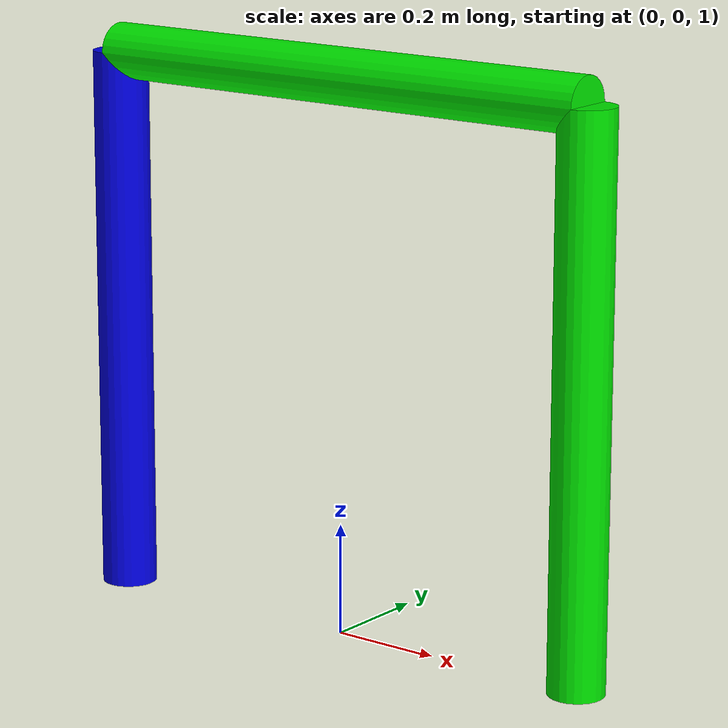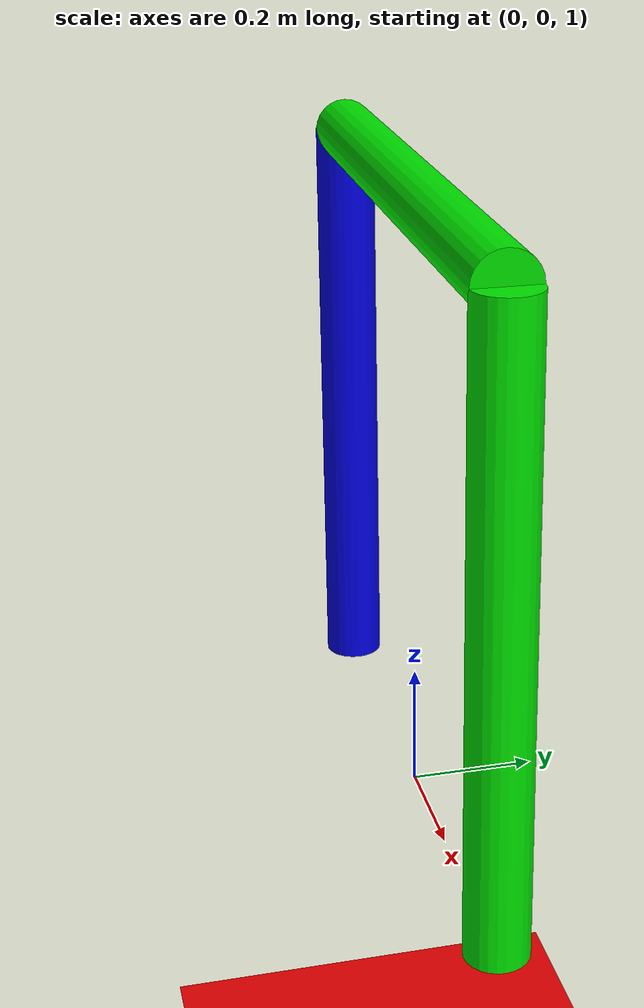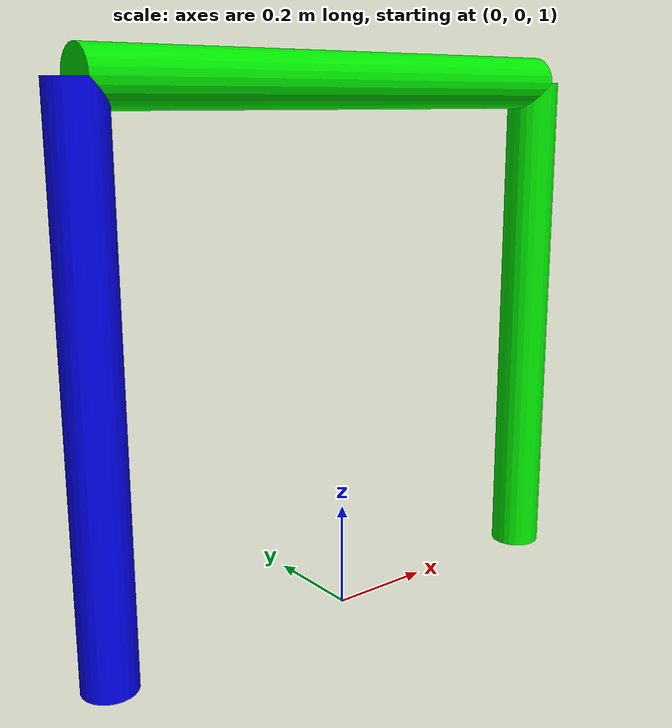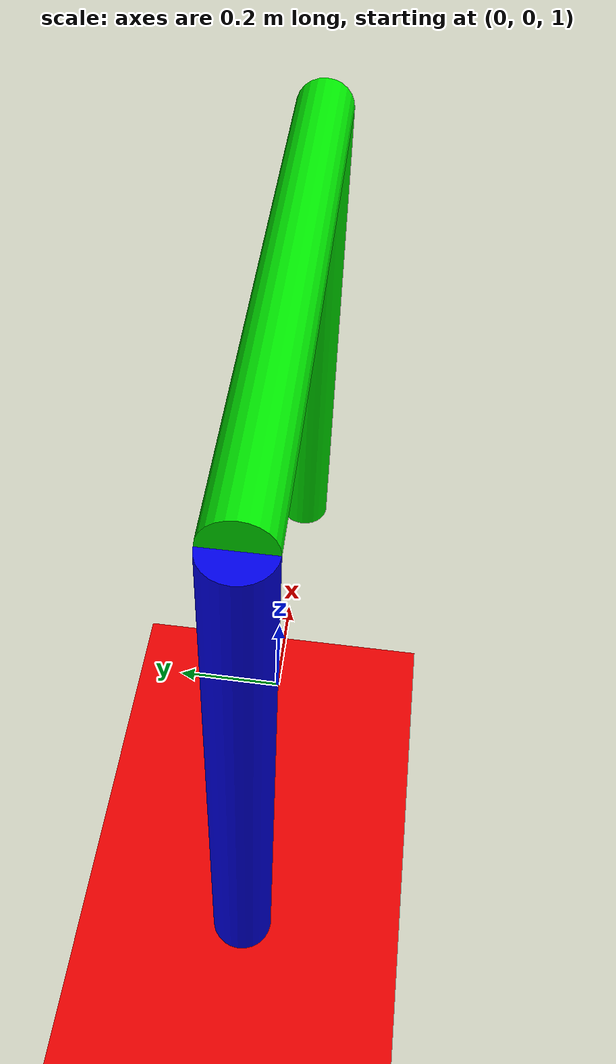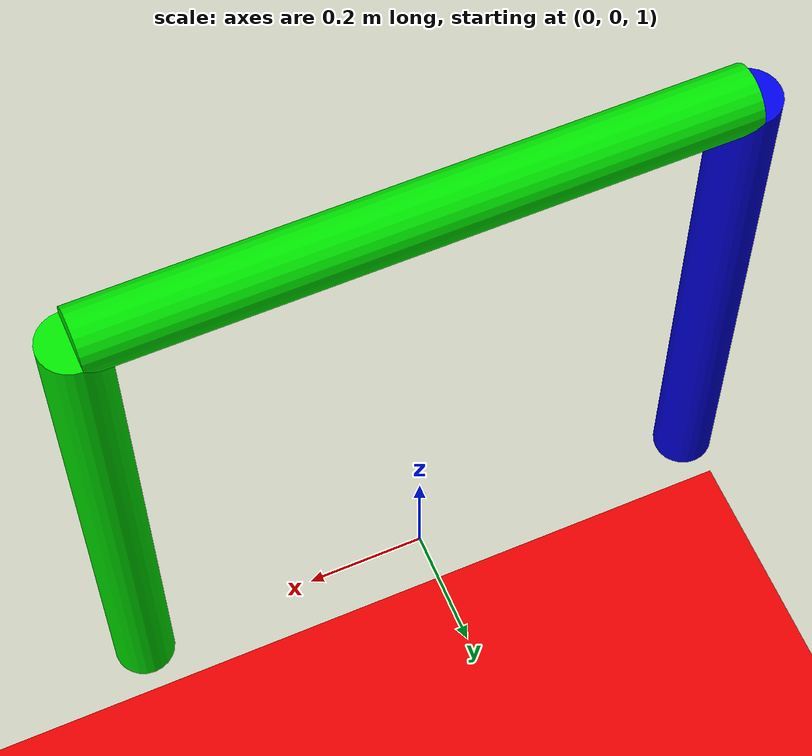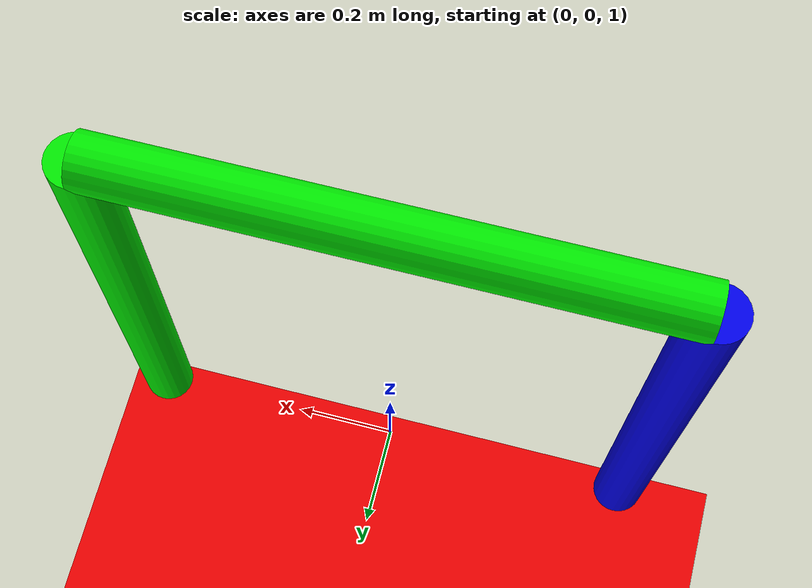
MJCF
<mujoco>
	<option>
		<flag sensornoise="enable"/>
	</option>
	<worldbody>
    <light diffuse=".5 .5 .5" pos="0 0 3" dir="0 0 -1"/>
		<geom type="plane" size="1 1 0.1" rgba=".9 0 0 1"/>
		<body pos="0 0 2" euler = "0 90 0 " name = "body1">
			<joint name = "pin" type="hinge" axis = "0 -1 0" pos = "0 0 0"/>
			<geom type="cylinder" size=".05 .5" rgba="0 .9 0 1" mass="1"/>
			<body pos = "0.5 0 -0.5" euler = "0 270 0 " name = "body3">
				<joint name = "pin2" type = "hinge" axis = "0 -1 0" pos="0 0 0.5"/>
				<geom type="cylinder" size=".05 .5" rgba="0 0 0.9 1" mass="1"/>
			</body>
		</body>
		<body pos = "0.5 0 1.5" euler = "0 180 0 " name = "body2">
			<joint name = "free1" type = "free"/>
			<geom type="cylinder" size=".05 .5" rgba="0 .9 0 1" mass="1"/>
		</body>
	</worldbody>
	<equality>
		<weld active = "true" body1 = "body1" body2 = "body2" relpose="0 0 -0.5 0 0 0 0" />
	</equality>
	<actuator>
		<motor joint="pin" name="torque" gear="1" ctrllimited="true" ctrlrange="-100 100"/>
		<position name = "position_servo" joint="pin" kp="10"/>
		<velocity name = "velocity_servo" joint="pin" kv="0"/>
	</actuator>
	<sensor>
		<jointpos joint = "pin" noise="0.2"/>
		<jointvel joint = "pin" noise = "1"/>
	</sensor>
</mujoco>
